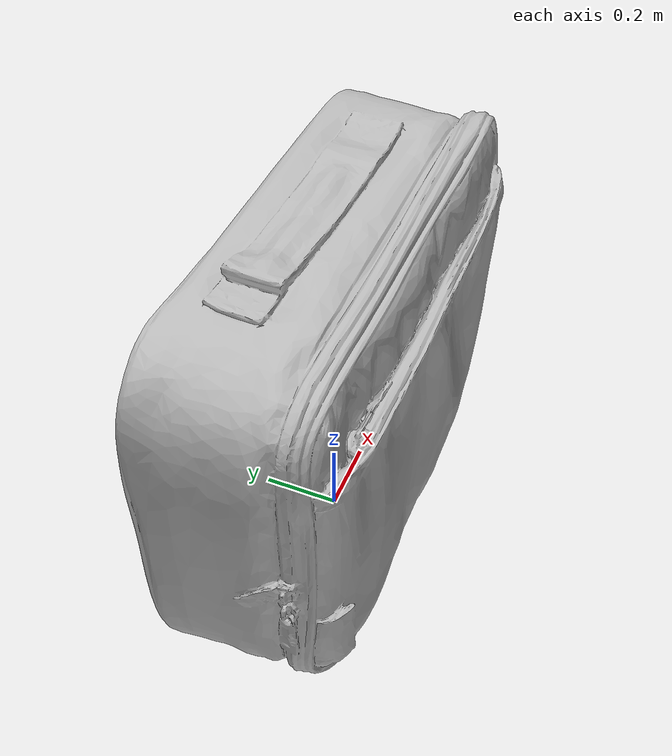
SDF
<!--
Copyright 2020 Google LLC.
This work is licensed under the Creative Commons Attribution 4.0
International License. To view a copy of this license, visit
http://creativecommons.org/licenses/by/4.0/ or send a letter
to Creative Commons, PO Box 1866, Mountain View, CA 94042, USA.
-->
<?xml version="1.0" ?>
<sdf version="1.6">
  <model name="SANDWICH_MEAL">
    <link name="link_0">
      <visual name="visual">
        <geometry>
          <mesh>
            <uri>meshes/model.obj</uri>
            <scale>5.0 5.0 5.0</scale>
          </mesh>
        </geometry>
      </visual>
      <collision name="collision_0">
        <geometry>
          <mesh>
            <uri>meshes/model.obj</uri>
            <scale>5.0 5.0 5.0</scale>
          </mesh>
        </geometry>
      </collision>
    </link>
  </model>
</sdf>
